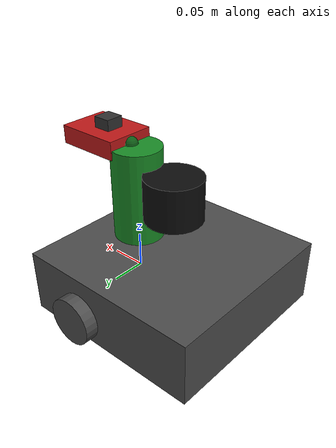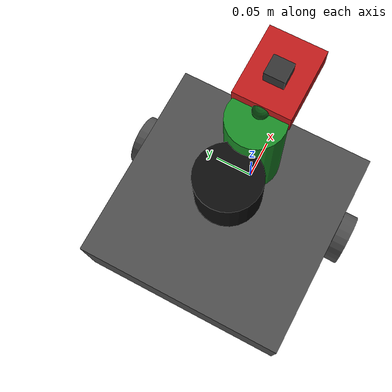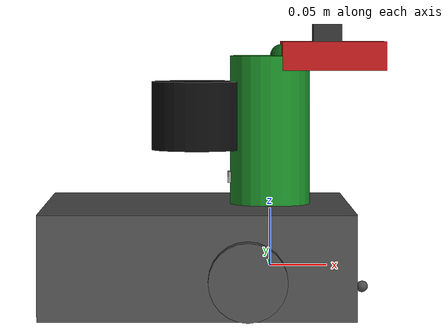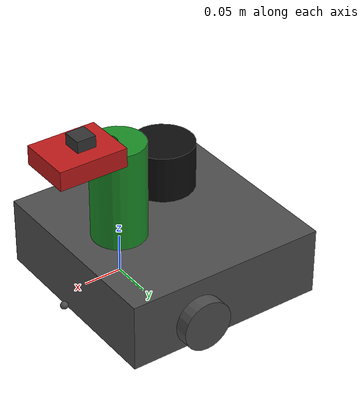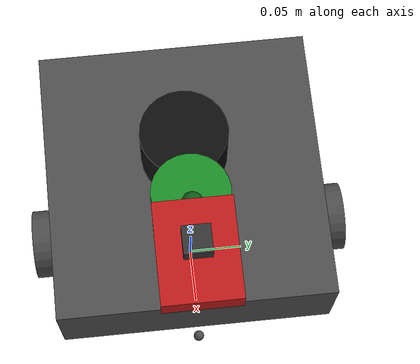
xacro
<?xml version="1.0"?>
<robot name="patrol_robot" xmlns:xacro="http://www.ros.org/wiki/xacro">

  <!-- ══════════════════════════════════════════════════════════════════
       Properties
  ══════════════════════════════════════════════════════════════════════ -->

  <!-- TurtleBot3 Waffle chassis -->
  <xacro:property name="base_x_size"          value="0.266000"/>
  <xacro:property name="base_y_size"          value="0.266000"/>
  <xacro:property name="base_z_size"          value="0.089000"/>

  <!-- Wheels (XM430-W210) -->
  <xacro:property name="wheel_radius"         value="0.033000"/>
  <xacro:property name="wheel_width"          value="0.018000"/>
  <xacro:property name="wheel_separation"     value="0.287000"/>
  <xacro:property name="wheel_x_offset"       value="-0.022000"/>
  <xacro:property name="wheel_z_offset"       value="-0.010000"/>

  <!-- Caster -->
  <xacro:property name="caster_wheel_radius"  value="0.005000"/>
  <xacro:property name="caster_front_x"       value="0.081500"/>
  <xacro:property name="caster_back_x"        value="-0.177500"/>

  <!-- Custom plant body -->
  <xacro:property name="stem_radius"          value="0.035000"/>
  <xacro:property name="stem_height"          value="0.130000"/>
  <xacro:property name="mouth_box_x"          value="0.090000"/>
  <xacro:property name="mouth_box_y"          value="0.070000"/>
  <xacro:property name="mouth_box_z"          value="0.025000"/>

  <!-- Camera -->
  <xacro:property name="cam_offset_x"         value="0.040000"/>
  <xacro:property name="cam_offset_z"         value="0.015000"/>

  <!-- ══════════════════════════════════════════════════════════════════
       Materials
  ══════════════════════════════════════════════════════════════════════ -->
  <material name="black">      <color rgba="0.05 0.05 0.05 1.0"/></material>
  <material name="dark_grey">  <color rgba="0.30 0.30 0.30 1.0"/></material>
  <material name="light_grey"> <color rgba="0.60 0.60 0.60 1.0"/></material>
  <material name="plant_green"><color rgba="0.10 0.55 0.15 1.0"/></material>
  <material name="dark_green"> <color rgba="0.05 0.35 0.08 1.0"/></material>
  <material name="mouth_red">  <color rgba="0.75 0.10 0.10 1.0"/></material>
  <material name="white">      <color rgba="1.00 1.00 1.00 1.0"/></material>
  <material name="camera_grey"><color rgba="0.20 0.20 0.20 1.0"/></material>

  <!-- ══════════════════════════════════════════════════════════════════
       BASE FOOTPRINT  (virtual ground-contact frame)
  ══════════════════════════════════════════════════════════════════════ -->
  <link name="base_footprint"/>

  <joint name="base_joint" type="fixed">
    <parent link="base_footprint"/>
    <child  link="base_link"/>
    <origin xyz="0.0 0.0 0.010" rpy="0.0 0.0 0.0"/>
  </joint>

  <!-- ══════════════════════════════════════════════════════════════════
       BASE LINK  (chassis plate)
  ══════════════════════════════════════════════════════════════════════ -->
  <link name="base_link">
    <visual>
      <origin xyz="-0.064 0.0 0.0" rpy="0.0 0.0 0.0"/>
      <geometry>
        <box size="${base_x_size} ${base_y_size} ${base_z_size}"/>
      </geometry>
      <material name="dark_grey"/>
    </visual>
    <collision>
      <origin xyz="-0.064 0.0 0.0" rpy="0.0 0.0 0.0"/>
      <geometry>
        <box size="${base_x_size} ${base_y_size} ${base_z_size}"/>
      </geometry>
    </collision>
    <inertial>
      <origin xyz="0.0 0.0 0.0" rpy="0.0 0.0 0.0"/>
      <mass value="1.3729096"/>
      <inertia ixx="8.7002718e-03" ixy="-4.7576583e-05" ixz="1.1160499e-04"
               iyy="8.6195418e-03" iyz="-3.5422299e-06"
               izz="1.4612727e-02"/>
    </inertial>
  </link>

  <!-- ══════════════════════════════════════════════════════════════════
       WHEELS
  ══════════════════════════════════════════════════════════════════════ -->

  <!-- Left wheel -->
  <joint name="wheel_left_joint" type="continuous">
    <parent link="base_link"/>
    <child  link="wheel_left_link"/>
    <origin xyz="${wheel_x_offset} ${wheel_separation/2} ${wheel_z_offset}"
            rpy="-1.5707963267948966 0.0 0.0"/>
    <axis xyz="0.0 0.0 1.0"/>
  </joint>

  <link name="wheel_left_link">
    <visual>
      <origin xyz="0.0 0.0 0.0" rpy="0.0 0.0 0.0"/>
      <geometry><cylinder radius="${wheel_radius}" length="${wheel_width}"/></geometry>
      <material name="dark_grey"/>
    </visual>
    <collision>
      <origin xyz="0.0 0.0 0.0" rpy="0.0 0.0 0.0"/>
      <geometry><cylinder radius="${wheel_radius}" length="${wheel_width}"/></geometry>
    </collision>
    <inertial>
      <origin xyz="0.0 0.0 0.0"/>
      <mass value="0.1"/>
      <inertia ixx="1.1175580e-05" ixy="-4.2369783e-11" ixz="-5.9381719e-09"
               iyy="1.1192413e-05" iyz="-1.4400107e-11"
               izz="2.0712558e-05"/>
    </inertial>
  </link>

  <!-- Right wheel -->
  <joint name="wheel_right_joint" type="continuous">
    <parent link="base_link"/>
    <child  link="wheel_right_link"/>
    <origin xyz="${wheel_x_offset} -${wheel_separation/2} ${wheel_z_offset}"
            rpy="-1.5707963267948966 0.0 0.0"/>
    <axis xyz="0.0 0.0 1.0"/>
  </joint>

  <link name="wheel_right_link">
    <visual>
      <origin xyz="0.0 0.0 0.0" rpy="0.0 0.0 0.0"/>
      <geometry><cylinder radius="${wheel_radius}" length="${wheel_width}"/></geometry>
      <material name="dark_grey"/>
    </visual>
    <collision>
      <origin xyz="0.0 0.0 0.0" rpy="0.0 0.0 0.0"/>
      <geometry><cylinder radius="${wheel_radius}" length="${wheel_width}"/></geometry>
    </collision>
    <inertial>
      <origin xyz="0.0 0.0 0.0"/>
      <mass value="0.1"/>
      <inertia ixx="1.1175580e-05" ixy="-4.2369783e-11" ixz="-5.9381719e-09"
               iyy="1.1192413e-05" iyz="-1.4400107e-11"
               izz="2.0712558e-05"/>
    </inertial>
  </link>

  <!-- Front caster -->
  <joint name="caster_front_joint" type="fixed">
    <parent link="base_link"/>
    <child  link="caster_front_link"/>
    <origin xyz="${caster_front_x} 0.0 -${wheel_radius - caster_wheel_radius}"
            rpy="-1.5707963267948966 0.0 0.0"/>
  </joint>

  <link name="caster_front_link">
    <visual>
      <origin xyz="0.0 0.001 0.0" rpy="0.0 0.0 0.0"/>
      <geometry><sphere radius="${caster_wheel_radius}"/></geometry>
      <material name="dark_grey"/>
    </visual>
    <collision>
      <origin xyz="0.0 0.001 0.0" rpy="0.0 0.0 0.0"/>
      <geometry><sphere radius="${caster_wheel_radius}"/></geometry>
    </collision>
    <inertial>
      <origin xyz="0.0 0.0 0.0"/>
      <mass value="0.01"/>
      <inertia ixx="2.7e-07" ixy="0.0" ixz="0.0" iyy="2.7e-07" iyz="0.0" izz="2.7e-07"/>
    </inertial>
  </link>

  <!-- Back caster -->
  <joint name="caster_back_joint" type="fixed">
    <parent link="base_link"/>
    <child  link="caster_back_link"/>
    <origin xyz="${caster_back_x} 0.0 -${wheel_radius - caster_wheel_radius}"
            rpy="-1.5707963267948966 0.0 0.0"/>
  </joint>

  <link name="caster_back_link">
    <visual>
      <origin xyz="0.0 0.001 0.0" rpy="0.0 0.0 0.0"/>
      <geometry><sphere radius="${caster_wheel_radius}"/></geometry>
      <material name="dark_grey"/>
    </visual>
    <collision>
      <origin xyz="0.0 0.001 0.0" rpy="0.0 0.0 0.0"/>
      <geometry><sphere radius="${caster_wheel_radius}"/></geometry>
    </collision>
    <inertial>
      <origin xyz="0.0 0.0 0.0"/>
      <mass value="0.01"/>
      <inertia ixx="2.7e-07" ixy="0.0" ixz="0.0" iyy="2.7e-07" iyz="0.0" izz="2.7e-07"/>
    </inertial>
  </link>

  <!-- ══════════════════════════════════════════════════════════════════
       IMU
  ══════════════════════════════════════════════════════════════════════ -->
  <joint name="imu_joint" type="fixed">
    <parent link="base_link"/>
    <child  link="imu_link"/>
    <origin xyz="-0.032 0.0 0.068" rpy="0.0 0.0 0.0"/>
  </joint>

  <link name="imu_link">
    <visual>
      <geometry><box size="0.010 0.010 0.010"/></geometry>
      <material name="light_grey"/>
    </visual>
    <inertial>
      <mass value="0.001"/>
      <inertia ixx="1e-07" ixy="0.0" ixz="0.0" iyy="1e-07" iyz="0.0" izz="1e-07"/>
    </inertial>
  </link>

  <!-- ══════════════════════════════════════════════════════════════════
       LIDAR  (LDS-02, matches LDS_MODEL=LDS-01 footprint)
  ══════════════════════════════════════════════════════════════════════ -->
  <joint name="scan_joint" type="fixed">
    <parent link="base_link"/>
    <child  link="base_scan"/>
    <origin xyz="-0.064 0.0 0.122" rpy="0.0 0.0 0.0"/>
  </joint>

  <link name="base_scan">
    <visual>
      <origin xyz="0.0 0.0 0.0" rpy="0.0 0.0 0.0"/>
      <geometry><cylinder radius="0.040" length="0.060"/></geometry>
      <material name="black"/>
    </visual>
    <collision>
      <origin xyz="0.0 0.0 0.0" rpy="0.0 0.0 0.0"/>
      <geometry><cylinder radius="0.040" length="0.060"/></geometry>
    </collision>
    <inertial>
      <mass value="0.125"/>
      <inertia ixx="1.0e-04" ixy="0.0" ixz="0.0" iyy="1.0e-04" iyz="0.0" izz="1.0e-04"/>
    </inertial>
  </link>

  <!-- Stem: fixed to base_link, centred on top of chassis -->
  <joint name="stem_joint" type="fixed">
    <parent link="base_link"/>
    <child  link="body_stem_link"/>
    <origin xyz="0.0 0.0 ${base_z_size/2 + stem_height/2}" rpy="0.0 0.0 0.0"/>
  </joint>

  <link name="body_stem_link">
    <visual>
      <origin xyz="0.0 0.0 0.0" rpy="0.0 0.0 0.0"/>
      <geometry><cylinder radius="${stem_radius}" length="${stem_height}"/></geometry>
      <material name="plant_green"/>
    </visual>
    <collision>
      <origin xyz="0.0 0.0 0.0" rpy="0.0 0.0 0.0"/>
      <geometry><cylinder radius="${stem_radius}" length="${stem_height}"/></geometry>
    </collision>
    <inertial>
      <mass value="0.200"/>
      <inertia ixx="3.5e-04" ixy="0.0" ixz="0.0" iyy="3.5e-04" iyz="0.0" izz="1.2e-04"/>
    </inertial>
  </link>

  <!-- Mouth base: fixed anchor at top of stem, offset forward slightly -->
  <joint name="mouth_base_joint" type="fixed">
    <parent link="body_stem_link"/>
    <child  link="mouth_base_link"/>
    <origin xyz="0.010 0.0 ${stem_height/2}" rpy="0.0 0.0 0.0"/>
  </joint>

  <link name="mouth_base_link">
    <!-- Very small link, just an anchor -->
    <visual>
      <geometry><sphere radius="0.010"/></geometry>
      <material name="dark_green"/>
    </visual>
    <inertial>
      <mass value="0.010"/>
      <inertia ixx="1e-06" ixy="0.0" ixz="0.0" iyy="1e-06" iyz="0.0" izz="1e-06"/>
    </inertial>
  </link>

  <!-- GIX joint: revolute around Y — mouth tilts open/closed
       open  = -1.0 rad  (tilted forward ~57°)
       closed= -1.8 rad  (nearly vertical, camera hidden)
  -->
  <joint name="gix" type="revolute">
    <parent link="mouth_base_link"/>
    <child  link="mouth_link"/>
    <origin xyz="0.0 0.0 0.0" rpy="0.0 0.0 0.0"/>
    <axis xyz="0.0 1.0 0.0"/>
    <limit lower="-2.0" upper="0.0" effort="2.0" velocity="1.0"/>
    <dynamics damping="0.01" friction="0.01"/>
  </joint>

  <link name="mouth_link">
    <!-- Red inner mouth box — visible when open, shows camera is active -->
    <visual>
      <origin xyz="${mouth_box_x/2} 0.0 0.0" rpy="0.0 0.0 0.0"/>
      <geometry>
        <box size="${mouth_box_x} ${mouth_box_y} ${mouth_box_z}"/>
      </geometry>
      <material name="mouth_red"/>
    </visual>
    <collision>
      <origin xyz="${mouth_box_x/2} 0.0 0.0" rpy="0.0 0.0 0.0"/>
      <geometry>
        <box size="${mouth_box_x} ${mouth_box_y} ${mouth_box_z}"/>
      </geometry>
    </collision>
    <inertial>
      <origin xyz="${mouth_box_x/2} 0.0 0.0"/>
      <mass value="0.080"/>
      <inertia ixx="2.5e-05" ixy="0.0" ixz="0.0" iyy="6.0e-05" iyz="0.0" izz="6.0e-05"/>
    </inertial>
  </link>

  <!-- Camera: fixed inside the mouth, pointing outward along +X -->
  <joint name="camera_joint" type="fixed">
    <parent link="mouth_link"/>
    <child  link="camera_link"/>
    <origin xyz="${cam_offset_x} 0.0 ${cam_offset_z}" rpy="0.0 0.0 0.0"/>
  </joint>

  <link name="camera_link">
    <visual>
      <origin xyz="0.0 0.0 0.0" rpy="0.0 0.0 0.0"/>
      <geometry><box size="0.025 0.025 0.025"/></geometry>
      <material name="camera_grey"/>
    </visual>
    <inertial>
      <mass value="0.020"/>
      <inertia ixx="1e-06" ixy="0.0" ixz="0.0" iyy="1e-06" iyz="0.0" izz="1e-06"/>
    </inertial>
  </link>

  <!-- Camera optical frame (ROS convention: Z forward, X right, Y down) -->
  <joint name="camera_optical_joint" type="fixed">
    <parent link="camera_link"/>
    <child  link="camera_optical_link"/>
    <origin xyz="0.0 0.0 0.0" rpy="-1.5707963267948966 0.0 -1.5707963267948966"/>
  </joint>

  <link name="camera_optical_link"/>

</robot>
